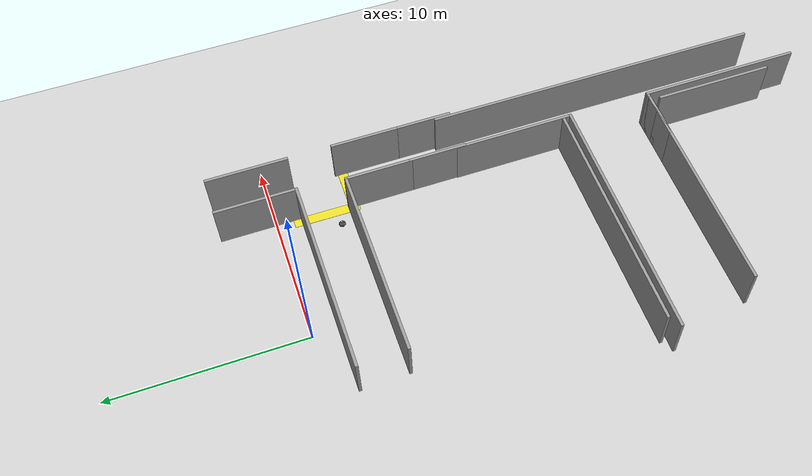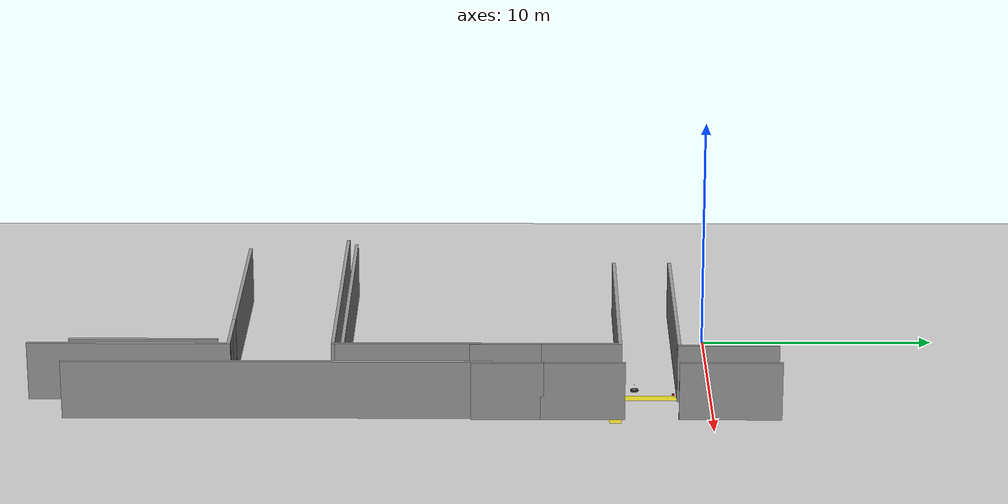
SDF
<sdf version="1.7">
 <world name="default">
  <plugin name="gazebo_ros_state" filename="libgazebo_ros_state.so">
   <publish_nested_model_pose>1</publish_nested_model_pose>
  </plugin>
  <light name="sun" type="directional">
   <pose>0 0 10 0 -0 0</pose>
   <diffuse>0.8 0.8 0.8 1</diffuse>
   <specular>0.2 0.2 0.2 1</specular>
   <attenuation>
    <range>1000</range>
    <constant>0.9</constant>
    <linear>0.01</linear>
    <quadratic>0.001</quadratic>
   </attenuation>
   <direction>-0.5 0.1 -0.9</direction>
   <spot><inner_angle>0</inner_angle><outer_angle>0</outer_angle><falloff>0</falloff></spot>
  </light>
  <model name="ground">
   <static>1</static>
   <link name="ground_link">
    <collision name="ground_collision">
     <geometry><plane><size>1000 1000</size><normal>0 0 1</normal></plane></geometry>
    </collision>
    <visual name="ground_visual">
     <geometry><plane><size>1000 1000</size><normal>0 0 1</normal></plane></geometry>
     <material>
      <script><uri>file://media/materials/scripts/gazebo.material</uri><name>Gazebo/Grey</name></script>
     </material>
    </visual>
   </link>
  </model>
  <gravity>0 0 -9.8</gravity>
  <physics type="ode">
   <max_step_size>0.001</max_step_size>
   <real_time_factor>1</real_time_factor>
   <real_time_update_rate>1000</real_time_update_rate>
  </physics>
  <scene><ambient>0.4 0.4 0.4 1</ambient><background>0.7 0.7 0.7 1</background><shadows>1</shadows></scene>
  <audio><device>default</device></audio>
  <magnetic_field>6e-06 2.3e-05 -4.2e-05</magnetic_field>
  <atmosphere type="adiabatic"/>
  <spherical_coordinates>
   <surface_model>EARTH_WGS84</surface_model>
   <latitude_deg>0</latitude_deg>
   <longitude_deg>0</longitude_deg>
   <elevation>0</elevation>
   <heading_deg>0</heading_deg>
  </spherical_coordinates>
  <model name="create3">
   <link name="base_link">
    <inertial>
     <pose>0.005858 0 0.074755 0 -0 0</pose>
     <mass>2.441</mass>
     <inertia>
      <ixx>0.0169591</ixx>
      <ixy>2.58494e-26</ixy>
      <ixz>-7.04774e-05</ixz>
      <iyy>0.0180083</iyy>
      <iyz>-1.01644e-20</iyz>
      <izz>0.0330283</izz>
     </inertia>
    </inertial>
    <collision name="base_link_fixed_joint_lump__create3_base_collision_collision">
     <pose>0 0 0.0492 0 -0 1.5708</pose>
     <geometry><cylinder><length>0.06</length><radius>0.164</radius></cylinder></geometry>
    </collision>
    <collision name="base_link_fixed_joint_lump__lidar_frame_collision_1">
     <pose>0.1 0 0.108 0 -0 3.14159</pose>
     <geometry><cylinder><length>0.04</length><radius>0.05</radius></cylinder></geometry>
    </collision>
    <visual name="base_link_visual">
     <pose>0 0 0.0392 0 -0 1.5708</pose>
     <geometry>
      <mesh><scale>1 1 1</scale><uri>model://irobot_create_description/meshes/body_visual.dae</uri></mesh>
     </geometry>
    </visual>
    <visual name="base_link_fixed_joint_lump__camera_link_visual_1">
     <pose>-0.1 0 0.25 0 0.959931 3.1415</pose>
     <geometry><box><size>0.01 0.03 0.03</size></box></geometry>
     <material>
      <script><name>Gazebo/Red</name><uri>file://media/materials/scripts/gazebo.material</uri></script>
     </material>
    </visual>
    <visual name="base_link_fixed_joint_lump__lidar_frame_visual_2">
     <pose>0.1 0 0.108 0 -0 3.14159</pose>
     <geometry><cylinder><length>0.04</length><radius>0.05</radius></cylinder></geometry>
    </visual>
    <sensor name="camera" type="camera">
     <visualize>1</visualize>
     <update_rate>10</update_rate>
     <camera>
      <horizontal_fov>1.089</horizontal_fov>
      <image><format>R8G8B8</format><width>640</width><height>480</height></image>
      <clip><near>0.05</near><far>8</far></clip>
     </camera>
     <plugin name="camera_controller" filename="libgazebo_ros_camera.so">
      <frame_name>camera_link_optical</frame_name>
     </plugin>
     <pose>-0.1 0 0.25 0 0.959931 3.1415</pose>
    </sensor>
    <sensor name="cliff_front_left" type="ray">
     <update_rate>62</update_rate>
     <visualize>1</visualize>
     <always_on>1</always_on>
     <ray>
      <scan>
       <horizontal>
        <samples>1</samples>
        <resolution>1</resolution>
        <min_angle>-0.0436332</min_angle>
        <max_angle>0.0436332</max_angle>
       </horizontal>
       <vertical>
        <samples>1</samples>
        <resolution>1</resolution>
        <min_angle>0</min_angle>
        <max_angle>0</max_angle>
       </vertical>
      </scan>
      <range><min>0.0001</min><max>0.15</max><resolution>1</resolution></range>
     </ray>
     <plugin name="cliff_front_left" filename="libgazebo_ros_create_cliff_sensor.so">
      <ros><remapping>~/out:=_internal/cliff_front_left/event</remapping></ros>
      <detection_threshold>0.08</detection_threshold>
      <frame_id>cliff_front_left</frame_id>
     </plugin>
     <pose>0.16 0.045 0.0192 0 1.39626 1.1397</pose>
     <noise><type>gaussian</type><mean>0.0</mean><stddev>0.0</stddev></noise>
    </sensor>
    <sensor name="cliff_front_right" type="ray">
     <update_rate>62</update_rate>
     <visualize>1</visualize>
     <always_on>1</always_on>
     <ray>
      <scan>
       <horizontal>
        <samples>1</samples>
        <resolution>1</resolution>
        <min_angle>-0.0436332</min_angle>
        <max_angle>0.0436332</max_angle>
       </horizontal>
       <vertical>
        <samples>1</samples>
        <resolution>1</resolution>
        <min_angle>0</min_angle>
        <max_angle>0</max_angle>
       </vertical>
      </scan>
      <range><min>0.0001</min><max>0.15</max><resolution>1</resolution></range>
     </ray>
     <plugin name="cliff_front_right" filename="libgazebo_ros_create_cliff_sensor.so">
      <ros><remapping>~/out:=_internal/cliff_front_right/event</remapping></ros>
      <detection_threshold>0.08</detection_threshold>
      <frame_id>cliff_front_right</frame_id>
     </plugin>
     <pose>0.16 -0.045 0.0192 0 1.39626 -1.1397</pose>
     <noise><type>gaussian</type><mean>0.0</mean><stddev>0.0</stddev></noise>
    </sensor>
    <sensor name="cliff_side_left" type="ray">
     <update_rate>62</update_rate>
     <visualize>1</visualize>
     <always_on>1</always_on>
     <ray>
      <scan>
       <horizontal>
        <samples>1</samples>
        <resolution>1</resolution>
        <min_angle>-0.0436332</min_angle>
        <max_angle>0.0436332</max_angle>
       </horizontal>
       <vertical>
        <samples>1</samples>
        <resolution>1</resolution>
        <min_angle>0</min_angle>
        <max_angle>0</max_angle>
       </vertical>
      </scan>
      <range><min>0.0001</min><max>0.15</max><resolution>1</resolution></range>
     </ray>
     <plugin name="cliff_side_left" filename="libgazebo_ros_create_cliff_sensor.so">
      <ros><remapping>~/out:=_internal/cliff_side_left/event</remapping></ros>
      <detection_threshold>0.08</detection_threshold>
      <frame_id>cliff_side_left</frame_id>
     </plugin>
     <pose>0.06 0.145 0.0192 0 1.39626 2.92168</pose>
     <noise><type>gaussian</type><mean>0.0</mean><stddev>0.0</stddev></noise>
    </sensor>
    <sensor name="cliff_side_right" type="ray">
     <update_rate>62</update_rate>
     <visualize>1</visualize>
     <always_on>1</always_on>
     <ray>
      <scan>
       <horizontal>
        <samples>1</samples>
        <resolution>1</resolution>
        <min_angle>-0.0436332</min_angle>
        <max_angle>0.0436332</max_angle>
       </horizontal>
       <vertical>
        <samples>1</samples>
        <resolution>1</resolution>
        <min_angle>0</min_angle>
        <max_angle>0</max_angle>
       </vertical>
      </scan>
      <range><min>0.0001</min><max>0.15</max><resolution>1</resolution></range>
     </ray>
     <plugin name="cliff_side_right" filename="libgazebo_ros_create_cliff_sensor.so">
      <ros><remapping>~/out:=_internal/cliff_side_right/event</remapping></ros>
      <detection_threshold>0.08</detection_threshold>
      <frame_id>cliff_side_right</frame_id>
     </plugin>
     <pose>0.06 -0.145 0.0192 -0 1.39626 -2.92168</pose>
     <noise><type>gaussian</type><mean>0.0</mean><stddev>0.0</stddev></noise>
    </sensor>
    <sensor name="laser" type="ray">
     <visualize>1</visualize>
     <update_rate>10</update_rate>
     <ray>
      <scan>
       <horizontal>
        <samples>720</samples>
        <min_angle>-3.1459</min_angle>
        <max_angle>3.1459</max_angle>
        <resolution>1</resolution>
       </horizontal>
       <vertical><samples>1</samples><min_angle>0</min_angle><max_angle>0</max_angle></vertical>
       <time_increment>0.0000555</time_increment>
       <scan_time>0.1</scan_time>
      </scan>
      <range><min>0.1</min><max>12</max></range>
     </ray>
     <plugin name="laser_controller" filename="libgazebo_ros_ray_sensor.so">
      <ros><argument>~/out:=/scan</argument></ros>
      <output_type>sensor_msgs/LaserScan</output_type>
      <frame_name>lidar_frame</frame_name>
     </plugin>
     <pose>0.1 0 0.108 0 -0 3.14159</pose>
    </sensor>
   </link>
   <joint name="bumper_joint" type="fixed">
    <pose relative_to="base_link">0 0 0.0392 0 -0 0</pose>
    <parent>base_link</parent>
    <child>bumper</child>
    <axis>
     <dynamics><spring_reference>0</spring_reference><spring_stiffness>0</spring_stiffness></dynamics>
     <xyz>0 0 1</xyz>
     <limit><lower>-1e+16</lower><upper>1e+16</upper></limit>
    </axis>
    <physics><ode><limit><cfm>0</cfm><erp>0.2</erp></limit></ode></physics>
   </joint>
   <link name="bumper">
    <pose relative_to="bumper_joint">0 0 0 0 -0 0</pose>
    <inertial>
     <pose>0.08 0 0.02 0 -0 0</pose>
     <mass>0.1</mass>
     <inertia>
      <ixx>0.00134838</ixx>
      <ixy>4.54352e-08</ixy>
      <ixz>1.44348e-06</ixz>
      <iyy>0.000252174</iyy>
      <iyz>-6.721e-10</iyz>
      <izz>0.00154425</izz>
     </inertia>
    </inertial>
    <collision name="bumper_collision">
     <geometry>
      <mesh><scale>1 1 1</scale><uri>model://irobot_create_description/meshes/bumper_collision.dae</uri></mesh>
     </geometry>
     <surface>
      <contact><ode><max_vel>0.01</max_vel><min_depth>0.001</min_depth></ode></contact>
      <friction><ode><mu>0.1</mu><mu2>0.1</mu2></ode></friction>
     </surface>
    </collision>
    <visual name="bumper_visual">
     <geometry>
      <mesh><scale>1 1 1</scale><uri>model://irobot_create_description/meshes/bumper_visual.dae</uri></mesh>
     </geometry>
     <material>
      <script><name>Gazebo/DarkGrey</name><uri>file://media/materials/scripts/gazebo.material</uri></script>
     </material>
    </visual>
    <sensor name="bumper_contact_sensor" type="contact">
     <always_on>1</always_on>
     <update_rate>62</update_rate>
     <contact><collision>bumper_collision</collision><topic>__default_topic__</topic></contact>
     <plugin name="bumper_plugin" filename="libgazebo_ros_create_bumper.so">
      <ros><remapping>~/out:=_internal/bumper/event</remapping></ros>
     </plugin>
    </sensor>
   </link>
   <joint name="front_caster_joint" type="fixed">
    <pose relative_to="base_link">0.125 0 0.0122 -1.5708 0 0</pose>
    <parent>base_link</parent>
    <child>front_caster_link</child>
    <axis>
     <dynamics><spring_reference>0</spring_reference><spring_stiffness>0</spring_stiffness></dynamics>
     <xyz>0 0 1</xyz>
     <limit><lower>-1e+16</lower><upper>1e+16</upper></limit>
    </axis>
    <physics><ode><limit><cfm>0</cfm><erp>0.2</erp></limit></ode></physics>
   </joint>
   <link name="front_caster_link">
    <pose relative_to="front_caster_joint">0 0 0 0 -0 0</pose>
    <inertial>
     <mass>0.01</mass>
     <inertia><ixx>4e-07</ixx><ixy>0</ixy><ixz>0</ixz><iyy>4e-07</iyy><iyz>0</iyz><izz>4e-07</izz></inertia>
    </inertial>
    <collision name="front_caster_link_collision">
     <geometry><sphere><radius>0.01</radius></sphere></geometry>
     <surface>
      <contact><ode><kp>1e+06</kp><kd>1</kd></ode></contact>
      <friction><ode><mu>0.1</mu><mu2>0.1</mu2></ode></friction>
     </surface>
    </collision>
    <visual name="front_caster_link_visual">
     <geometry><sphere><radius>0.01</radius></sphere></geometry>
     <material>
      <script><name>Gazebo/DarkGrey</name><uri>file://media/materials/scripts/gazebo.material</uri></script>
     </material>
    </visual>
   </link>
   <joint name="imu_joint" type="fixed">
    <pose relative_to="base_link">0.050613 0.043673 0.0844 0 -0 0</pose>
    <parent>base_link</parent>
    <child>imu_link</child>
    <axis>
     <dynamics><spring_reference>0</spring_reference><spring_stiffness>0</spring_stiffness></dynamics>
     <xyz>0 0 1</xyz>
     <limit><lower>-1e+16</lower><upper>1e+16</upper></limit>
    </axis>
    <physics><ode><limit><cfm>0</cfm><erp>0.2</erp></limit></ode></physics>
   </joint>
   <link name="imu_link">
    <pose relative_to="imu_joint">0 0 0 0 -0 0</pose>
    <inertial>
     <mass>0.01</mass>
     <inertia>
      <ixx>1.66667e-07</ixx>
      <ixy>0</ixy>
      <ixz>0</ixz>
      <iyy>1.66667e-07</iyy>
      <iyz>0</iyz>
      <izz>1.66667e-07</izz>
     </inertia>
    </inertial>
    <sensor name="imu" type="imu">
     <always_on>1</always_on>
     <update_rate>62</update_rate>
     <imu>
      <angular_velocity>
       <x><noise type="gaussian"><mean>0</mean><stddev>0</stddev></noise></x>
       <y><noise type="gaussian"><mean>0</mean><stddev>0</stddev></noise></y>
       <z><noise type="gaussian"><mean>0</mean><stddev>0</stddev></noise></z>
      </angular_velocity>
      <linear_acceleration>
       <x><noise type="gaussian"><mean>0</mean><stddev>0</stddev></noise></x>
       <y><noise type="gaussian"><mean>0</mean><stddev>0</stddev></noise></y>
       <z><noise type="gaussian"><mean>0</mean><stddev>0</stddev></noise></z>
      </linear_acceleration>
     </imu>
     <plugin name="imu_plugin" filename="libgazebo_ros_create_imu.so">
      <ros><remapping>~/out:=imu</remapping></ros>
     </plugin>
    </sensor>
   </link>
   <joint name="ir_intensity_front_center_left_joint" type="fixed">
    <pose relative_to="base_link">0.154 0 0.0572 0 -0 0</pose>
    <parent>base_link</parent>
    <child>ir_intensity_front_center_left</child>
    <axis>
     <dynamics><spring_reference>0</spring_reference><spring_stiffness>0</spring_stiffness></dynamics>
     <xyz>0 0 1</xyz>
     <limit><lower>-1e+16</lower><upper>1e+16</upper></limit>
    </axis>
    <physics><ode><limit><cfm>0</cfm><erp>0.2</erp></limit></ode></physics>
   </joint>
   <link name="ir_intensity_front_center_left">
    <pose relative_to="ir_intensity_front_center_left_joint">0 0 0 0 -0 0</pose>
    <inertial>
     <mass>0.01</mass>
     <inertia>
      <ixx>1.66667e-07</ixx>
      <ixy>0</ixy>
      <ixz>0</ixz>
      <iyy>1.66667e-07</iyy>
      <iyz>0</iyz>
      <izz>1.66667e-07</izz>
     </inertia>
    </inertial>
    <sensor name="ir_intensity_front_center_left" type="ray">
     <update_rate>62</update_rate>
     <visualize>0</visualize>
     <always_on>1</always_on>
     <ray>
      <scan>
       <horizontal>
        <samples>5</samples>
        <resolution>1</resolution>
        <min_angle>-0.0872665</min_angle>
        <max_angle>0.0872665</max_angle>
       </horizontal>
       <vertical>
        <samples>5</samples>
        <resolution>1</resolution>
        <min_angle>-0.0872665</min_angle>
        <max_angle>0.0872665</max_angle>
       </vertical>
      </scan>
      <range><min>0.025</min><max>0.2</max><resolution>1</resolution></range>
     </ray>
     <plugin name="ir_intensity_front_center_left" filename="libgazebo_ros_create_ir_intensity_sensor.so">
      <ros><remapping>~/out:=_internal/ir_intensity_front_center_left</remapping></ros>
     </plugin>
     <noise><type>gaussian</type><mean>0.0</mean><stddev>0.0</stddev></noise>
    </sensor>
   </link>
   <joint name="ir_intensity_front_center_right_joint" type="fixed">
    <pose relative_to="base_link">0.1396 -0.0651 0.0572 0 0 -0.436</pose>
    <parent>base_link</parent>
    <child>ir_intensity_front_center_right</child>
    <axis>
     <dynamics><spring_reference>0</spring_reference><spring_stiffness>0</spring_stiffness></dynamics>
     <xyz>0 0 1</xyz>
     <limit><lower>-1e+16</lower><upper>1e+16</upper></limit>
    </axis>
    <physics><ode><limit><cfm>0</cfm><erp>0.2</erp></limit></ode></physics>
   </joint>
   <link name="ir_intensity_front_center_right">
    <pose relative_to="ir_intensity_front_center_right_joint">0 0 0 0 -0 0</pose>
    <inertial>
     <mass>0.01</mass>
     <inertia>
      <ixx>1.66667e-07</ixx>
      <ixy>0</ixy>
      <ixz>0</ixz>
      <iyy>1.66667e-07</iyy>
      <iyz>0</iyz>
      <izz>1.66667e-07</izz>
     </inertia>
    </inertial>
    <sensor name="ir_intensity_front_center_right" type="ray">
     <update_rate>62</update_rate>
     <visualize>0</visualize>
     <always_on>1</always_on>
     <ray>
      <scan>
       <horizontal>
        <samples>5</samples>
        <resolution>1</resolution>
        <min_angle>-0.0872665</min_angle>
        <max_angle>0.0872665</max_angle>
       </horizontal>
       <vertical>
        <samples>5</samples>
        <resolution>1</resolution>
        <min_angle>-0.0872665</min_angle>
        <max_angle>0.0872665</max_angle>
       </vertical>
      </scan>
      <range><min>0.025</min><max>0.2</max><resolution>1</resolution></range>
     </ray>
     <plugin name="ir_intensity_front_center_right" filename="libgazebo_ros_create_ir_intensity_sensor.so">
      <ros><remapping>~/out:=_internal/ir_intensity_front_center_right</remapping></ros>
     </plugin>
     <noise><type>gaussian</type><mean>0.0</mean><stddev>0.0</stddev></noise>
    </sensor>
   </link>
   <joint name="ir_intensity_front_left_joint" type="fixed">
    <pose relative_to="base_link">0.1396 0.0651 0.0572 0 -0 0.436</pose>
    <parent>base_link</parent>
    <child>ir_intensity_front_left</child>
    <axis>
     <dynamics><spring_reference>0</spring_reference><spring_stiffness>0</spring_stiffness></dynamics>
     <xyz>0 0 1</xyz>
     <limit><lower>-1e+16</lower><upper>1e+16</upper></limit>
    </axis>
    <physics><ode><limit><cfm>0</cfm><erp>0.2</erp></limit></ode></physics>
   </joint>
   <link name="ir_intensity_front_left">
    <pose relative_to="ir_intensity_front_left_joint">0 0 0 0 -0 0</pose>
    <inertial>
     <mass>0.01</mass>
     <inertia>
      <ixx>1.66667e-07</ixx>
      <ixy>0</ixy>
      <ixz>0</ixz>
      <iyy>1.66667e-07</iyy>
      <iyz>0</iyz>
      <izz>1.66667e-07</izz>
     </inertia>
    </inertial>
    <sensor name="ir_intensity_front_left" type="ray">
     <update_rate>62</update_rate>
     <visualize>0</visualize>
     <always_on>1</always_on>
     <ray>
      <scan>
       <horizontal>
        <samples>5</samples>
        <resolution>1</resolution>
        <min_angle>-0.0872665</min_angle>
        <max_angle>0.0872665</max_angle>
       </horizontal>
       <vertical>
        <samples>5</samples>
        <resolution>1</resolution>
        <min_angle>-0.0872665</min_angle>
        <max_angle>0.0872665</max_angle>
       </vertical>
      </scan>
      <range><min>0.025</min><max>0.2</max><resolution>1</resolution></range>
     </ray>
     <plugin name="ir_intensity_front_left" filename="libgazebo_ros_create_ir_intensity_sensor.so">
      <ros><remapping>~/out:=_internal/ir_intensity_front_left</remapping></ros>
     </plugin>
     <noise><type>gaussian</type><mean>0.0</mean><stddev>0.0</stddev></noise>
    </sensor>
   </link>
   <joint name="ir_intensity_front_right_joint" type="fixed">
    <pose relative_to="base_link">0.099 -0.118 0.0572 0 0 -0.873</pose>
    <parent>base_link</parent>
    <child>ir_intensity_front_right</child>
    <axis>
     <dynamics><spring_reference>0</spring_reference><spring_stiffness>0</spring_stiffness></dynamics>
     <xyz>0 0 1</xyz>
     <limit><lower>-1e+16</lower><upper>1e+16</upper></limit>
    </axis>
    <physics><ode><limit><cfm>0</cfm><erp>0.2</erp></limit></ode></physics>
   </joint>
   <link name="ir_intensity_front_right">
    <pose relative_to="ir_intensity_front_right_joint">0 0 0 0 -0 0</pose>
    <inertial>
     <mass>0.01</mass>
     <inertia>
      <ixx>1.66667e-07</ixx>
      <ixy>0</ixy>
      <ixz>0</ixz>
      <iyy>1.66667e-07</iyy>
      <iyz>0</iyz>
      <izz>1.66667e-07</izz>
     </inertia>
    </inertial>
    <sensor name="ir_intensity_front_right" type="ray">
     <update_rate>62</update_rate>
     <visualize>0</visualize>
     <always_on>1</always_on>
     <ray>
      <scan>
       <horizontal>
        <samples>5</samples>
        <resolution>1</resolution>
        <min_angle>-0.0872665</min_angle>
        <max_angle>0.0872665</max_angle>
       </horizontal>
       <vertical>
        <samples>5</samples>
        <resolution>1</resolution>
        <min_angle>-0.0872665</min_angle>
        <max_angle>0.0872665</max_angle>
       </vertical>
      </scan>
      <range><min>0.025</min><max>0.2</max><resolution>1</resolution></range>
     </ray>
     <plugin name="ir_intensity_front_right" filename="libgazebo_ros_create_ir_intensity_sensor.so">
      <ros><remapping>~/out:=_internal/ir_intensity_front_right</remapping></ros>
     </plugin>
     <noise><type>gaussian</type><mean>0.0</mean><stddev>0.0</stddev></noise>
    </sensor>
   </link>
   <joint name="ir_intensity_left_joint" type="fixed">
    <pose relative_to="base_link">0.099 0.118 0.0572 0 -0 0.873</pose>
    <parent>base_link</parent>
    <child>ir_intensity_left</child>
    <axis>
     <dynamics><spring_reference>0</spring_reference><spring_stiffness>0</spring_stiffness></dynamics>
     <xyz>0 0 1</xyz>
     <limit><lower>-1e+16</lower><upper>1e+16</upper></limit>
    </axis>
    <physics><ode><limit><cfm>0</cfm><erp>0.2</erp></limit></ode></physics>
   </joint>
   <link name="ir_intensity_left">
    <pose relative_to="ir_intensity_left_joint">0 0 0 0 -0 0</pose>
    <inertial>
     <mass>0.01</mass>
     <inertia>
      <ixx>1.66667e-07</ixx>
      <ixy>0</ixy>
      <ixz>0</ixz>
      <iyy>1.66667e-07</iyy>
      <iyz>0</iyz>
      <izz>1.66667e-07</izz>
     </inertia>
    </inertial>
    <sensor name="ir_intensity_left" type="ray">
     <update_rate>62</update_rate>
     <visualize>0</visualize>
     <always_on>1</always_on>
     <ray>
      <scan>
       <horizontal>
        <samples>5</samples>
        <resolution>1</resolution>
        <min_angle>-0.0872665</min_angle>
        <max_angle>0.0872665</max_angle>
       </horizontal>
       <vertical>
        <samples>5</samples>
        <resolution>1</resolution>
        <min_angle>-0.0872665</min_angle>
        <max_angle>0.0872665</max_angle>
       </vertical>
      </scan>
      <range><min>0.025</min><max>0.2</max><resolution>1</resolution></range>
     </ray>
     <plugin name="ir_intensity_left" filename="libgazebo_ros_create_ir_intensity_sensor.so">
      <ros><remapping>~/out:=_internal/ir_intensity_left</remapping></ros>
     </plugin>
     <noise><type>gaussian</type><mean>0.0</mean><stddev>0.0</stddev></noise>
    </sensor>
   </link>
   <joint name="ir_intensity_right_joint" type="fixed">
    <pose relative_to="base_link">0.0399 -0.1488 0.0572 0 0 -1.309</pose>
    <parent>base_link</parent>
    <child>ir_intensity_right</child>
    <axis>
     <dynamics><spring_reference>0</spring_reference><spring_stiffness>0</spring_stiffness></dynamics>
     <xyz>0 0 1</xyz>
     <limit><lower>-1e+16</lower><upper>1e+16</upper></limit>
    </axis>
    <physics><ode><limit><cfm>0</cfm><erp>0.2</erp></limit></ode></physics>
   </joint>
   <link name="ir_intensity_right">
    <pose relative_to="ir_intensity_right_joint">0 0 0 0 -0 0</pose>
    <inertial>
     <mass>0.01</mass>
     <inertia>
      <ixx>1.66667e-07</ixx>
      <ixy>0</ixy>
      <ixz>0</ixz>
      <iyy>1.66667e-07</iyy>
      <iyz>0</iyz>
      <izz>1.66667e-07</izz>
     </inertia>
    </inertial>
    <sensor name="ir_intensity_right" type="ray">
     <update_rate>62</update_rate>
     <visualize>0</visualize>
     <always_on>1</always_on>
     <ray>
      <scan>
       <horizontal>
        <samples>5</samples>
        <resolution>1</resolution>
        <min_angle>-0.0872665</min_angle>
        <max_angle>0.0872665</max_angle>
       </horizontal>
       <vertical>
        <samples>5</samples>
        <resolution>1</resolution>
        <min_angle>-0.0872665</min_angle>
        <max_angle>0.0872665</max_angle>
       </vertical>
      </scan>
      <range><min>0.025</min><max>0.2</max><resolution>1</resolution></range>
     </ray>
     <plugin name="ir_intensity_right" filename="libgazebo_ros_create_ir_intensity_sensor.so">
      <ros><remapping>~/out:=_internal/ir_intensity_right</remapping></ros>
     </plugin>
     <noise><type>gaussian</type><mean>0.0</mean><stddev>0.0</stddev></noise>
    </sensor>
   </link>
   <joint name="ir_intensity_side_left_joint" type="fixed">
    <pose relative_to="base_link">0.0399 0.1488 0.0572 0 -0 1.309</pose>
    <parent>base_link</parent>
    <child>ir_intensity_side_left</child>
    <axis>
     <dynamics><spring_reference>0</spring_reference><spring_stiffness>0</spring_stiffness></dynamics>
     <xyz>0 0 1</xyz>
     <limit><lower>-1e+16</lower><upper>1e+16</upper></limit>
    </axis>
    <physics><ode><limit><cfm>0</cfm><erp>0.2</erp></limit></ode></physics>
   </joint>
   <link name="ir_intensity_side_left">
    <pose relative_to="ir_intensity_side_left_joint">0 0 0 0 -0 0</pose>
    <inertial>
     <mass>0.01</mass>
     <inertia>
      <ixx>1.66667e-07</ixx>
      <ixy>0</ixy>
      <ixz>0</ixz>
      <iyy>1.66667e-07</iyy>
      <iyz>0</iyz>
      <izz>1.66667e-07</izz>
     </inertia>
    </inertial>
    <sensor name="ir_intensity_side_left" type="ray">
     <update_rate>62</update_rate>
     <visualize>0</visualize>
     <always_on>1</always_on>
     <ray>
      <scan>
       <horizontal>
        <samples>5</samples>
        <resolution>1</resolution>
        <min_angle>-0.0872665</min_angle>
        <max_angle>0.0872665</max_angle>
       </horizontal>
       <vertical>
        <samples>5</samples>
        <resolution>1</resolution>
        <min_angle>-0.0872665</min_angle>
        <max_angle>0.0872665</max_angle>
       </vertical>
      </scan>
      <range><min>0.025</min><max>0.2</max><resolution>1</resolution></range>
     </ray>
     <plugin name="ir_intensity_side_left" filename="libgazebo_ros_create_ir_intensity_sensor.so">
      <ros><remapping>~/out:=_internal/ir_intensity_side_left</remapping></ros>
     </plugin>
     <noise><type>gaussian</type><mean>0.0</mean><stddev>0.0</stddev></noise>
    </sensor>
   </link>
   <joint name="ir_omni_joint" type="fixed">
    <pose relative_to="base_link">0.153 0 0.0992 0 -0 0</pose>
    <parent>base_link</parent>
    <child>ir_omni</child>
    <axis>
     <dynamics><spring_reference>0</spring_reference><spring_stiffness>0</spring_stiffness></dynamics>
     <xyz>0 0 1</xyz>
     <limit><lower>-1e+16</lower><upper>1e+16</upper></limit>
    </axis>
    <physics><ode><limit><cfm>0</cfm><erp>0.2</erp></limit></ode></physics>
   </joint>
   <link name="ir_omni">
    <pose relative_to="ir_omni_joint">0 0 0 0 -0 0</pose>
    <inertial>
     <mass>0.01</mass>
     <inertia>
      <ixx>1.66667e-07</ixx>
      <ixy>0</ixy>
      <ixz>0</ixz>
      <iyy>1.66667e-07</iyy>
      <iyz>0</iyz>
      <izz>1.66667e-07</izz>
     </inertia>
    </inertial>
   </link>
   <joint name="mouse_joint" type="fixed">
    <pose relative_to="base_link">0.1015 0.087 0.0092 0 0 -0.785398</pose>
    <parent>base_link</parent>
    <child>mouse</child>
    <axis>
     <dynamics><spring_reference>0</spring_reference><spring_stiffness>0</spring_stiffness></dynamics>
     <xyz>0 0 1</xyz>
     <limit><lower>-1e+16</lower><upper>1e+16</upper></limit>
    </axis>
    <physics><ode><limit><cfm>0</cfm><erp>0.2</erp></limit></ode></physics>
   </joint>
   <link name="mouse">
    <pose relative_to="mouse_joint">0 0 0 0 -0 0</pose>
    <inertial>
     <mass>0.01</mass>
     <inertia>
      <ixx>1.66667e-07</ixx>
      <ixy>0</ixy>
      <ixz>0</ixz>
      <iyy>1.66667e-07</iyy>
      <iyz>0</iyz>
      <izz>1.66667e-07</izz>
     </inertia>
    </inertial>
   </link>
   <joint name="wheel_drop_left_joint" type="prismatic">
    <pose relative_to="base_link">0 0.1165 0.0402 -1.5708 0 0</pose>
    <parent>base_link</parent>
    <child>wheel_drop_left</child>
    <axis>
     <xyz>0 1 0</xyz>
     <limit><lower>0</lower><upper>0.03</upper><effort>0</effort><velocity>0</velocity></limit>
     <dynamics>
      <damping>50</damping>
      <friction>0.1</friction>
      <spring_reference>0.03</spring_reference>
      <spring_stiffness>400</spring_stiffness>
     </dynamics>
    </axis>
    <physics>
     <provide_feedback>0</provide_feedback>
     <ode>
      <implicit_spring_damper>1</implicit_spring_damper>
      <cfm_damping>1</cfm_damping>
      <limit><cfm>0</cfm><erp>0.2</erp></limit>
      <provide_feedback>0</provide_feedback>
     </ode>
    </physics>
   </joint>
   <link name="wheel_drop_left">
    <pose relative_to="wheel_drop_left_joint">0 0 0 0 -0 0</pose>
    <inertial>
     <mass>0.05</mass>
     <inertia>
      <ixx>2.08333e-05</ixx>
      <ixy>0</ixy>
      <ixz>0</ixz>
      <iyy>2.08333e-05</iyy>
      <iyz>0</iyz>
      <izz>2.08333e-05</izz>
     </inertia>
    </inertial>
   </link>
   <joint name="left_wheel_joint" type="revolute">
    <pose relative_to="wheel_drop_left">0 0 0 0 -0 0</pose>
    <parent>wheel_drop_left</parent>
    <child>left_wheel</child>
    <axis>
     <xyz>0 0 1</xyz>
     <limit><lower>-1e+16</lower><upper>1e+16</upper></limit>
     <dynamics><spring_reference>0</spring_reference><spring_stiffness>0</spring_stiffness></dynamics>
    </axis>
   </joint>
   <link name="left_wheel">
    <pose relative_to="left_wheel_joint">0 0 0 0 -0 0</pose>
    <inertial>
     <mass>0.2</mass>
     <inertia>
      <ixx>6.76531e-05</ixx>
      <ixy>0</ixy>
      <ixz>0</ixz>
      <iyy>6.76531e-05</iyy>
      <iyz>0</iyz>
      <izz>0.000127806</izz>
     </inertia>
    </inertial>
    <collision name="left_wheel_collision">
     <geometry><cylinder><length>0.015</length><radius>0.03575</radius></cylinder></geometry>
     <surface>
      <contact><ode><kp>1e+06</kp><kd>100</kd><max_vel>1</max_vel><min_depth>0.0001</min_depth></ode></contact>
      <friction><ode><mu>1</mu><mu2>1</mu2></ode></friction>
     </surface>
    </collision>
    <visual name="left_wheel_visual">
     <geometry><cylinder><length>0.015</length><radius>0.03575</radius></cylinder></geometry>
     <material>
      <script><name>Gazebo/DarkGrey</name><uri>file://media/materials/scripts/gazebo.material</uri></script>
     </material>
    </visual>
   </link>
   <joint name="wheel_drop_right_joint" type="prismatic">
    <pose relative_to="base_link">0 -0.1165 0.0402 -1.5708 0 0</pose>
    <parent>base_link</parent>
    <child>wheel_drop_right</child>
    <axis>
     <xyz>0 1 0</xyz>
     <limit><lower>0</lower><upper>0.03</upper><effort>0</effort><velocity>0</velocity></limit>
     <dynamics>
      <damping>50</damping>
      <friction>0.1</friction>
      <spring_reference>0.03</spring_reference>
      <spring_stiffness>400</spring_stiffness>
     </dynamics>
    </axis>
    <physics>
     <provide_feedback>0</provide_feedback>
     <ode>
      <implicit_spring_damper>1</implicit_spring_damper>
      <cfm_damping>1</cfm_damping>
      <limit><cfm>0</cfm><erp>0.2</erp></limit>
      <provide_feedback>0</provide_feedback>
     </ode>
    </physics>
   </joint>
   <link name="wheel_drop_right">
    <pose relative_to="wheel_drop_right_joint">0 0 0 0 -0 0</pose>
    <inertial>
     <mass>0.05</mass>
     <inertia>
      <ixx>2.08333e-05</ixx>
      <ixy>0</ixy>
      <ixz>0</ixz>
      <iyy>2.08333e-05</iyy>
      <iyz>0</iyz>
      <izz>2.08333e-05</izz>
     </inertia>
    </inertial>
   </link>
   <joint name="right_wheel_joint" type="revolute">
    <pose relative_to="wheel_drop_right">0 0 0 0 -0 0</pose>
    <parent>wheel_drop_right</parent>
    <child>right_wheel</child>
    <axis>
     <xyz>0 0 1</xyz>
     <limit><lower>-1e+16</lower><upper>1e+16</upper></limit>
     <dynamics><spring_reference>0</spring_reference><spring_stiffness>0</spring_stiffness></dynamics>
    </axis>
   </joint>
   <link name="right_wheel">
    <pose relative_to="right_wheel_joint">0 0 0 0 -0 0</pose>
    <inertial>
     <mass>0.2</mass>
     <inertia>
      <ixx>6.76531e-05</ixx>
      <ixy>0</ixy>
      <ixz>0</ixz>
      <iyy>6.76531e-05</iyy>
      <iyz>0</iyz>
      <izz>0.000127806</izz>
     </inertia>
    </inertial>
    <collision name="right_wheel_collision">
     <geometry><cylinder><length>0.015</length><radius>0.03575</radius></cylinder></geometry>
     <surface>
      <contact><ode><kp>1e+06</kp><kd>100</kd><max_vel>1</max_vel><min_depth>0.0001</min_depth></ode></contact>
      <friction><ode><mu>1</mu><mu2>1</mu2></ode></friction>
     </surface>
    </collision>
    <visual name="right_wheel_visual">
     <geometry><cylinder><length>0.015</length><radius>0.03575</radius></cylinder></geometry>
     <material>
      <script><name>Gazebo/DarkGrey</name><uri>file://media/materials/scripts/gazebo.material</uri></script>
     </material>
    </visual>
   </link>
   <plugin name="wheel_drop_left_plugin" filename="libgazebo_ros_create_wheel_drop.so">
    <ros><remapping>~/out:=_internal/wheel_drop/left_wheel/event</remapping></ros>
    <update_rate>62</update_rate>
    <detection_threshold>0.03</detection_threshold>
    <joint_name>wheel_drop_left_joint</joint_name>
    <frame_id>wheel_drop_left</frame_id>
   </plugin>
   <plugin name="wheel_drop_right_plugin" filename="libgazebo_ros_create_wheel_drop.so">
    <ros><remapping>~/out:=_internal/wheel_drop/right_wheel/event</remapping></ros>
    <update_rate>62</update_rate>
    <detection_threshold>0.03</detection_threshold>
    <joint_name>wheel_drop_right_joint</joint_name>
    <frame_id>wheel_drop_right</frame_id>
   </plugin>
   <plugin name="gazebo_ros2_control" filename="libgazebo_ros2_control.so">
    <parameters>/home/capstone-guest/testing_ws/install/irobot_create_control/share/irobot_create_control/config/control.yaml</parameters>
    <ros>
     <remapping>~/odom:=odom</remapping>
     <remapping>/tf:=tf</remapping>
     <remapping>/tf_static:=tf_static</remapping>
     <remapping>/diagnostics:=diagnostics</remapping>
    </ros>
   </plugin>
   <plugin name="mouse_plugin" filename="libgazebo_ros_create_optical_mouse.so">
    <ros><remapping>~/out:=mouse</remapping></ros>
    <update_rate>62</update_rate>
    <link_name>mouse</link_name>
   </plugin>
   <plugin name="ir_omni_plugin" filename="libgazebo_ros_create_ir_opcode.so">
    <ros><remapping>~/out:=ir_opcode</remapping></ros>
    <update_rate>62</update_rate>
    <robot_model_name>create3</robot_model_name>
    <receiver_link_name>ir_omni</receiver_link_name>
    <dock_model_name>standard_dock</dock_model_name>
    <emitter_link_name>halo_link</emitter_link_name>
    <sensor_0_fov>3.839724354387525</sensor_0_fov>
    <sensor_0_range>0.01</sensor_0_range>
    <sensor_1_fov>1.5707963267948966</sensor_1_fov>
    <sensor_1_range>0.5</sensor_1_range>
   </plugin>
   <plugin name="gazebo_ros_p3d_robot" filename="libgazebo_ros_p3d.so">
    <ros><remapping>odom:=sim_ground_truth_pose</remapping></ros>
    <body_name>base_link</body_name>
    <frame_name>world</frame_name>
    <update_rate>62</update_rate>
    <xyz_offset>0 0 0</xyz_offset>
    <rpy_offset>0.0 0.0 0.0</rpy_offset>
    <gaussian_noise>0.0</gaussian_noise>
   </plugin>
   <static>0</static>
   <plugin name="dock_status_publisher" filename="libgazebo_ros_create_docking_status.so">
    <ros><remapping>~/out:=dock_status</remapping></ros>
    <update_rate>1.0</update_rate>
    <robot_model_name>create3</robot_model_name>
    <receiver_link_name>ir_omni</receiver_link_name>
    <dock_model_name>standard_dock</dock_model_name>
    <emitter_link_name>halo_link</emitter_link_name>
   </plugin>
   <pose>5.68071 -3.13775 -0.003713 -4.4e-05 0.007633 -0.000377</pose>
  </model>
  <model name="standard_dock">
   <link name="std_dock_link">
    <inertial>
     <mass>0.01</mass>
     <inertia>
      <ixx>1.66667e-07</ixx>
      <ixy>0</ixy>
      <ixz>0</ixz>
      <iyy>1.66667e-07</iyy>
      <iyz>0</iyz>
      <izz>1.66667e-07</izz>
     </inertia>
    </inertial>
    <collision name="std_dock_link_collision">
     <pose>-0.045 0 0.05 0 -0 0</pose>
     <geometry><box><size>0.04 0.13 0.1</size></box></geometry>
    </collision>
    <visual name="std_dock_link_visual">
     <pose>0 0 0.0046 0 -0 0</pose>
     <geometry>
      <mesh><scale>1 1 1</scale><uri>model://irobot_create_description/meshes/dock/visual.dae</uri></mesh>
     </geometry>
    </visual>
   </link>
   <joint name="green_buoy_joint" type="fixed">
    <pose relative_to="std_dock_link">-0.06 0 0.0604 0 0 -0.174533</pose>
    <parent>std_dock_link</parent>
    <child>green_buoy_link</child>
    <axis>
     <dynamics><spring_reference>0</spring_reference><spring_stiffness>0</spring_stiffness></dynamics>
     <xyz>0 0 1</xyz>
     <limit><lower>-1e+16</lower><upper>1e+16</upper></limit>
    </axis>
    <physics><ode><limit><cfm>0</cfm><erp>0.2</erp></limit></ode></physics>
   </joint>
   <link name="green_buoy_link">
    <pose relative_to="green_buoy_joint">0 0 0 0 -0 0</pose>
    <inertial>
     <mass>0.15</mass>
     <inertia>
      <ixx>5.8e-06</ixx>
      <ixy>0</ixy>
      <ixz>0</ixz>
      <iyy>3.25e-06</iyy>
      <iyz>0</iyz>
      <izz>7.45e-06</izz>
     </inertia>
    </inertial>
    <sensor name="green_buoy" type="ray">
     <update_rate>1</update_rate>
     <visualize>1</visualize>
     <always_on>1</always_on>
     <ray>
      <scan>
       <horizontal>
        <samples>50</samples>
        <resolution>1</resolution>
        <min_angle>-0.261799</min_angle>
        <max_angle>0.261799</max_angle>
       </horizontal>
       <vertical>
        <samples>1</samples>
        <resolution>1</resolution>
        <min_angle>0</min_angle>
        <max_angle>0</max_angle>
       </vertical>
      </scan>
      <range><min>0.07</min><max>1</max><resolution>0.01</resolution></range>
     </ray>
     <plugin name="dummy" filename="dummyfile"/>
     <noise><type>gaussian</type><mean>0.0</mean><stddev>0.0</stddev></noise>
    </sensor>
   </link>
   <joint name="halo_joint" type="fixed">
    <pose relative_to="std_dock_link">-0.06 0 0.0904 0 -0 0</pose>
    <parent>std_dock_link</parent>
    <child>halo_link</child>
    <axis>
     <dynamics><spring_reference>0</spring_reference><spring_stiffness>0</spring_stiffness></dynamics>
     <xyz>0 0 1</xyz>
     <limit><lower>-1e+16</lower><upper>1e+16</upper></limit>
    </axis>
    <physics><ode><limit><cfm>0</cfm><erp>0.2</erp></limit></ode></physics>
   </joint>
   <link name="halo_link">
    <pose relative_to="halo_joint">0 0 0 0 -0 0</pose>
    <inertial>
     <mass>0.15</mass>
     <inertia>
      <ixx>5.8e-06</ixx>
      <ixy>0</ixy>
      <ixz>0</ixz>
      <iyy>3.25e-06</iyy>
      <iyz>0</iyz>
      <izz>7.45e-06</izz>
     </inertia>
    </inertial>
    <sensor name="halo" type="ray">
     <update_rate>1</update_rate>
     <visualize>1</visualize>
     <always_on>1</always_on>
     <ray>
      <scan>
       <horizontal>
        <samples>50</samples>
        <resolution>1</resolution>
        <min_angle>-180</min_angle>
        <max_angle>180</max_angle>
       </horizontal>
       <vertical>
        <samples>1</samples>
        <resolution>1</resolution>
        <min_angle>0</min_angle>
        <max_angle>0</max_angle>
       </vertical>
      </scan>
      <range><min>0.07</min><max>0.6096</max><resolution>0.01</resolution></range>
     </ray>
     <plugin name="dummy" filename="dummyfile"/>
     <noise><type>gaussian</type><mean>0.0</mean><stddev>0.0</stddev></noise>
    </sensor>
   </link>
   <joint name="red_buoy_joint" type="fixed">
    <pose relative_to="std_dock_link">-0.06 0 0.0604 0 -0 0.174533</pose>
    <parent>std_dock_link</parent>
    <child>red_buoy_link</child>
    <axis>
     <dynamics><spring_reference>0</spring_reference><spring_stiffness>0</spring_stiffness></dynamics>
     <xyz>0 0 1</xyz>
     <limit><lower>-1e+16</lower><upper>1e+16</upper></limit>
    </axis>
    <physics><ode><limit><cfm>0</cfm><erp>0.2</erp></limit></ode></physics>
   </joint>
   <link name="red_buoy_link">
    <pose relative_to="red_buoy_joint">0 0 0 0 -0 0</pose>
    <inertial>
     <mass>0.15</mass>
     <inertia>
      <ixx>5.8e-06</ixx>
      <ixy>0</ixy>
      <ixz>0</ixz>
      <iyy>3.25e-06</iyy>
      <iyz>0</iyz>
      <izz>7.45e-06</izz>
     </inertia>
    </inertial>
    <sensor name="red_buoy" type="ray">
     <update_rate>1</update_rate>
     <visualize>1</visualize>
     <always_on>1</always_on>
     <ray>
      <scan>
       <horizontal>
        <samples>50</samples>
        <resolution>1</resolution>
        <min_angle>-0.261799</min_angle>
        <max_angle>0.261799</max_angle>
       </horizontal>
       <vertical>
        <samples>1</samples>
        <resolution>1</resolution>
        <min_angle>0</min_angle>
        <max_angle>0</max_angle>
       </vertical>
      </scan>
      <range><min>0.07</min><max>1</max><resolution>0.01</resolution></range>
     </ray>
     <plugin name="dummy" filename="dummyfile"/>
     <noise><type>gaussian</type><mean>0.0</mean><stddev>0.0</stddev></noise>
    </sensor>
   </link>
   <joint name="yellow_buoy_joint" type="fixed">
    <pose relative_to="std_dock_link">-0.06 0 0.0604 0 -0 0</pose>
    <parent>std_dock_link</parent>
    <child>yellow_buoy_link</child>
    <axis>
     <dynamics><spring_reference>0</spring_reference><spring_stiffness>0</spring_stiffness></dynamics>
     <xyz>0 0 1</xyz>
     <limit><lower>-1e+16</lower><upper>1e+16</upper></limit>
    </axis>
    <physics><ode><limit><cfm>0</cfm><erp>0.2</erp></limit></ode></physics>
   </joint>
   <link name="yellow_buoy_link">
    <pose relative_to="yellow_buoy_joint">0 0 0 0 -0 0</pose>
    <inertial>
     <mass>0.15</mass>
     <inertia>
      <ixx>5.8e-06</ixx>
      <ixy>0</ixy>
      <ixz>0</ixz>
      <iyy>3.25e-06</iyy>
      <iyz>0</iyz>
      <izz>7.45e-06</izz>
     </inertia>
    </inertial>
    <sensor name="yellow_buoy" type="ray">
     <update_rate>1</update_rate>
     <visualize>1</visualize>
     <always_on>1</always_on>
     <ray>
      <scan>
       <horizontal>
        <samples>50</samples>
        <resolution>1</resolution>
        <min_angle>-0.0872665</min_angle>
        <max_angle>0.0872665</max_angle>
       </horizontal>
       <vertical>
        <samples>1</samples>
        <resolution>1</resolution>
        <min_angle>0</min_angle>
        <max_angle>0</max_angle>
       </vertical>
      </scan>
      <range><min>0.07</min><max>1</max><resolution>0.01</resolution></range>
     </ray>
     <plugin name="dummy" filename="dummyfile"/>
     <noise><type>gaussian</type><mean>0.0</mean><stddev>0.0</stddev></noise>
    </sensor>
   </link>
   <static>1</static>
   <plugin name="gazebo_ros_p3d_dock" filename="libgazebo_ros_p3d.so">
    <ros><remapping>odom:=sim_ground_truth_dock_pose</remapping></ros>
    <body_name>std_dock_link</body_name>
    <frame_name>world</frame_name>
    <update_rate>1</update_rate>
    <xyz_offset>0 0 0</xyz_offset>
    <rpy_offset>0.0 0.0 0.0</rpy_offset>
    <gaussian_noise>0.0</gaussian_noise>
   </plugin>
   <pose>6.833 -7.70126 0 0 0 -0.046087</pose>
  </model>
  <model name="Untitled">
   <pose>1.22089 -12.8407 0 0 -0 0</pose>
   <link name="Wall_0">
    <collision name="Wall_0_Collision">
     <geometry><box><size>10 0.15 2.5</size></box></geometry>
     <pose>0 0 1.25 0 -0 0</pose>
    </collision>
    <visual name="Wall_0_Visual">
     <pose>0 0 1.25 0 -0 0</pose>
     <geometry><box><size>10 0.15 2.5</size></box></geometry>
     <material>
      <script><uri>file://media/materials/scripts/gazebo.material</uri><name>Gazebo/Grey</name></script>
      <ambient>1 1 1 1</ambient>
     </material>
     <meta><layer>0</layer></meta>
    </visual>
    <pose>0.434112 9.05074 0 0 -0 0</pose>
   </link>
   <link name="Wall_10">
    <collision name="Wall_10_Collision">
     <geometry><box><size>3.5 0.15 2.5</size></box></geometry>
     <pose>0 0 1.25 0 -0 0</pose>
    </collision>
    <visual name="Wall_10_Visual">
     <pose>0 0 1.25 0 -0 0</pose>
     <geometry><box><size>3.5 0.15 2.5</size></box></geometry>
     <material>
      <script><uri>file://media/materials/scripts/gazebo.material</uri><name>Gazebo/Grey</name></script>
      <ambient>1 1 1 1</ambient>
     </material>
     <meta><layer>0</layer></meta>
    </visual>
    <pose>5.35911 7.37574 0 0 -0 -1.5708</pose>
   </link>
   <link name="Wall_13">
    <collision name="Wall_13_Collision">
     <geometry><box><size>3 0.15 2.5</size></box></geometry>
     <pose>0 0 1.25 0 -0 0</pose>
    </collision>
    <visual name="Wall_13_Visual">
     <pose>0 0 1.25 0 -0 0</pose>
     <geometry><box><size>3 0.15 2.5</size></box></geometry>
     <material>
      <script><uri>file://media/materials/scripts/gazebo.material</uri><name>Gazebo/Grey</name></script>
      <ambient>1 1 1 1</ambient>
     </material>
     <meta><layer>0</layer></meta>
    </visual>
    <pose>5.35911 4.27574 0 0 -0 -1.5708</pose>
   </link>
   <link name="Wall_15">
    <collision name="Wall_15_Collision">
     <geometry><box><size>3 0.15 2.5</size></box></geometry>
     <pose>0 0 1.25 0 -0 0</pose>
    </collision>
    <visual name="Wall_15_Visual">
     <pose>0 0 1.25 0 -0 0</pose>
     <geometry><box><size>3 0.15 2.5</size></box></geometry>
     <material>
      <script><uri>file://media/materials/scripts/gazebo.material</uri><name>Gazebo/Grey</name></script>
      <ambient>1 1 1 1</ambient>
     </material>
     <meta><layer>0</layer></meta>
    </visual>
    <pose>7.52465 4.35844 0 0 -0 -1.5708</pose>
   </link>
   <link name="Wall_17">
    <collision name="Wall_17_Collision">
     <geometry><box><size>6.25 0.15 2.5</size></box></geometry>
     <pose>0 0 1.25 0 -0 0</pose>
    </collision>
    <visual name="Wall_17_Visual">
     <pose>0 0 1.25 0 -0 0</pose>
     <geometry><box><size>6.25 0.15 2.5</size></box></geometry>
     <material>
      <script><uri>file://media/materials/scripts/gazebo.material</uri><name>Gazebo/Grey</name></script>
      <ambient>1 1 1 1</ambient>
     </material>
     <meta><layer>0</layer></meta>
    </visual>
    <pose>5.32535 0.137353 0 0 -0 -1.5708</pose>
   </link>
   <link name="Wall_19">
    <collision name="Wall_19_Collision">
     <geometry><box><size>17.75 0.15 2.5</size></box></geometry>
     <pose>0 0 1.25 0 -0 0</pose>
    </collision>
    <visual name="Wall_19_Visual">
     <pose>0 0 1.25 0 -0 0</pose>
     <geometry><box><size>17.75 0.15 2.5</size></box></geometry>
     <material>
      <script><uri>file://media/materials/scripts/gazebo.material</uri><name>Gazebo/Grey</name></script>
      <ambient>1 1 1 1</ambient>
     </material>
     <meta><layer>0</layer></meta>
    </visual>
    <pose>7.3833 -5.13773 0 0 -0 -1.5708</pose>
   </link>
   <link name="Wall_2">
    <collision name="Wall_2_Collision">
     <geometry><box><size>10.25 0.15 2.5</size></box></geometry>
     <pose>0 0 1.25 0 -0 0</pose>
    </collision>
    <visual name="Wall_2_Visual">
     <pose>0 0 1.25 0 -0 0</pose>
     <geometry><box><size>10.25 0.15 2.5</size></box></geometry>
     <material>
      <script><uri>file://media/materials/scripts/gazebo.material</uri><name>Gazebo/Grey</name></script>
      <ambient>1 1 1 1</ambient>
     </material>
     <meta><layer>0</layer></meta>
    </visual>
    <pose>0.509112 11.5107 0 0 -0 0</pose>
   </link>
   <link name="Wall_21">
    <collision name="Wall_21_Collision">
     <geometry><box><size>6.25 0.15 2.5</size></box></geometry>
     <pose>0 0 1.25 0 -0 0</pose>
    </collision>
    <visual name="Wall_21_Visual">
     <pose>0 0 1.25 0 -0 0</pose>
     <geometry><box><size>6.25 0.15 2.5</size></box></geometry>
     <material>
      <script><uri>file://media/materials/scripts/gazebo.material</uri><name>Gazebo/Grey</name></script>
      <ambient>1 1 1 1</ambient>
     </material>
     <meta><layer>0</layer></meta>
    </visual>
    <pose>4.85043 -10.8595 0 0 -0 1.5708</pose>
   </link>
   <link name="Wall_23">
    <collision name="Wall_23_Collision">
     <geometry><box><size>12.25 0.15 2.5</size></box></geometry>
     <pose>0 0 1.25 0 -0 0</pose>
    </collision>
    <visual name="Wall_23_Visual">
     <pose>0 0 1.25 0 -0 0</pose>
     <geometry><box><size>12.25 0.15 2.5</size></box></geometry>
     <material>
      <script><uri>file://media/materials/scripts/gazebo.material</uri><name>Gazebo/Grey</name></script>
      <ambient>1 1 1 1</ambient>
     </material>
     <meta><layer>0</layer></meta>
    </visual>
    <pose>-0.882958 -2.51161 0 0 -0 3.14159</pose>
   </link>
   <link name="Wall_25">
    <collision name="Wall_25_Collision">
     <geometry><box><size>8.5 0.15 2.5</size></box></geometry>
     <pose>0 0 1.25 0 -0 0</pose>
    </collision>
    <visual name="Wall_25_Visual">
     <pose>0 0 1.25 0 -0 0</pose>
     <geometry><box><size>8.5 0.15 2.5</size></box></geometry>
     <material>
      <script><uri>file://media/materials/scripts/gazebo.material</uri><name>Gazebo/Grey</name></script>
      <ambient>1 1 1 1</ambient>
     </material>
     <meta><layer>0</layer></meta>
    </visual>
    <pose>5.32535 -11.4357 0 0 -0 -1.5708</pose>
   </link>
   <link name="Wall_27">
    <collision name="Wall_27_Collision">
     <geometry><box><size>11.5 0.15 2.5</size></box></geometry>
     <pose>0 0 1.25 0 -0 0</pose>
    </collision>
    <visual name="Wall_27_Visual">
     <pose>0 0 1.25 0 -0 0</pose>
     <geometry><box><size>11.5 0.15 2.5</size></box></geometry>
     <material>
      <script><uri>file://media/materials/scripts/gazebo.material</uri><name>Gazebo/Grey</name></script>
      <ambient>1 1 1 1</ambient>
     </material>
     <meta><layer>0</layer></meta>
    </visual>
    <pose>-0.666262 -7.26074 0 0 -0 3.14159</pose>
   </link>
   <link name="Wall_29">
    <collision name="Wall_29_Collision">
     <geometry><box><size>2.5 0.15 2.5</size></box></geometry>
     <pose>0 0 1.25 0 -0 0</pose>
    </collision>
    <visual name="Wall_29_Visual">
     <pose>0 0 1.25 0 -0 0</pose>
     <geometry><box><size>2.5 0.15 2.5</size></box></geometry>
     <material>
      <script><uri>file://media/materials/scripts/gazebo.material</uri><name>Gazebo/Grey</name></script>
      <ambient>1 1 1 1</ambient>
     </material>
     <meta><layer>0</layer></meta>
    </visual>
    <pose>3.83374 -7.26074 0 0 -0 3.14159</pose>
   </link>
   <link name="Wall_31">
    <collision name="Wall_31_Collision">
     <geometry><box><size>1 0.15 2.5</size></box></geometry>
     <pose>0 0 1.25 0 -0 0</pose>
    </collision>
    <visual name="Wall_31_Visual">
     <pose>0 0 1.25 0 -0 0</pose>
     <geometry><box><size>1 0.15 2.5</size></box></geometry>
     <material>
      <script><uri>file://media/materials/scripts/gazebo.material</uri><name>Gazebo/Grey</name></script>
      <ambient>1 1 1 1</ambient>
     </material>
     <meta><layer>0</layer></meta>
    </visual>
    <pose>4.58374 -7.26074 0 0 -0 3.14159</pose>
   </link>
   <link name="Wall_33">
    <collision name="Wall_33_Collision">
     <geometry><box><size>2.81661 0.15 2.5</size></box></geometry>
     <pose>0 0 1.25 0 -0 0</pose>
    </collision>
    <visual name="Wall_33_Visual">
     <pose>0 0 1.25 0 -0 0</pose>
     <geometry><box><size>2.81661 0.15 2.5</size></box></geometry>
     <material>
      <script><uri>file://media/materials/scripts/gazebo.material</uri><name>Gazebo/Grey</name></script>
      <ambient>1 1 1 1</ambient>
     </material>
     <meta><layer>0</layer></meta>
    </visual>
    <pose>3.99204 -7.26074 0 0 -0 3.14159</pose>
   </link>
   <link name="Wall_35">
    <collision name="Wall_35_Collision">
     <geometry><box><size>13 0.15 2.5</size></box></geometry>
     <pose>0 0 1.25 0 -0 0</pose>
    </collision>
    <visual name="Wall_35_Visual">
     <pose>0 0 1.25 0 -0 0</pose>
     <geometry><box><size>13 0.15 2.5</size></box></geometry>
     <material>
      <script><uri>file://media/materials/scripts/gazebo.material</uri><name>Gazebo/Grey</name></script>
      <ambient>1 1 1 1</ambient>
     </material>
     <meta><layer>0</layer></meta>
    </visual>
    <pose>-1.09965 -2.91265 0 0 -0 3.14159</pose>
   </link>
   <link name="Wall_4">
    <collision name="Wall_4_Collision">
     <geometry><box><size>4.25 0.15 2.5</size></box></geometry>
     <pose>0 0 1.25 0 -0 0</pose>
    </collision>
    <visual name="Wall_4_Visual">
     <pose>0 0 1.25 0 -0 0</pose>
     <geometry><box><size>4.25 0.15 2.5</size></box></geometry>
     <material>
      <script><uri>file://media/materials/scripts/gazebo.material</uri><name>Gazebo/Grey</name></script>
      <ambient>1 1 1 1</ambient>
     </material>
     <meta><layer>0</layer></meta>
    </visual>
    <pose>5.55911 13.5607 0 0 -0 1.5708</pose>
   </link>
   <link name="Wall_6">
    <collision name="Wall_6_Collision">
     <geometry><box><size>4.25 0.15 2.5</size></box></geometry>
     <pose>0 0 1.25 0 -0 0</pose>
    </collision>
    <visual name="Wall_6_Visual">
     <pose>0 0 1.25 0 -0 0</pose>
     <geometry><box><size>4.25 0.15 2.5</size></box></geometry>
     <material>
      <script><uri>file://media/materials/scripts/gazebo.material</uri><name>Gazebo/Grey</name></script>
      <ambient>1 1 1 1</ambient>
     </material>
     <meta><layer>0</layer></meta>
    </visual>
    <pose>7.52465 13.5568 0 0 -0 1.5708</pose>
   </link>
   <link name="Wall_8">
    <collision name="Wall_8_Collision">
     <geometry><box><size>3.5 0.15 2.5</size></box></geometry>
     <pose>0 0 1.25 0 -0 0</pose>
    </collision>
    <visual name="Wall_8_Visual">
     <pose>0 0 1.25 0 -0 0</pose>
     <geometry><box><size>3.5 0.15 2.5</size></box></geometry>
     <material>
      <script><uri>file://media/materials/scripts/gazebo.material</uri><name>Gazebo/Grey</name></script>
      <ambient>1 1 1 1</ambient>
     </material>
     <meta><layer>0</layer></meta>
    </visual>
    <pose>7.52465 7.45844 0 0 -0 -1.5708</pose>
   </link>
   <static>1</static>
  </model>
  <model name="d0_6a_d2_02_42_eb">
   <static>1</static>
   <link name="link">
    <visual name="beacon_visual">
     <geometry><cylinder><radius>0.05</radius><length>0.1</length></cylinder></geometry>
     <material>
      <script><uri>file://media/materials/scripts/gazebo.material</uri><name>Gazebo/Red</name></script>
     </material>
    </visual>
   </link>
   <pose>6.07897 -1.5268 0 0 -0 0</pose>
  </model>
  <model name="df_2b_70_a8_21_90">
   <static>1</static>
   <link name="link">
    <visual name="beacon_visual">
     <geometry><cylinder><radius>0.05</radius><length>0.1</length></cylinder></geometry>
     <material>
      <script><uri>file://media/materials/scripts/gazebo.material</uri><name>Gazebo/Red</name></script>
     </material>
    </visual>
   </link>
   <pose>6.82059 -8.42247 0 0 -0 0</pose>
  </model>
  <model name="intersection_marker">
   <static>1</static>
   <pose>7.72636 -4.03141 0.01 0 -0 0</pose>
   <link name="link">
    <visual name="visual">
     <geometry><box><size>3 0.5 0.01</size></box></geometry>
     <material>
      <script><uri>file://media/materials/scripts/gazebo.material</uri><name>Gazebo/Yellow</name></script>
     </material>
    </visual>
   </link>
  </model>
  <model name="intersection_marker_0">
   <static>1</static>
   <pose>6.51255 -2.36581 0.01 0 0 -1.57799</pose>
   <link name="link">
    <visual name="visual">
     <geometry><box><size>3 0.5 0.01</size></box></geometry>
     <material>
      <script><uri>file://media/materials/scripts/gazebo.material</uri><name>Gazebo/Yellow</name></script>
     </material>
    </visual>
   </link>
  </model>
 </world>
</sdf>
